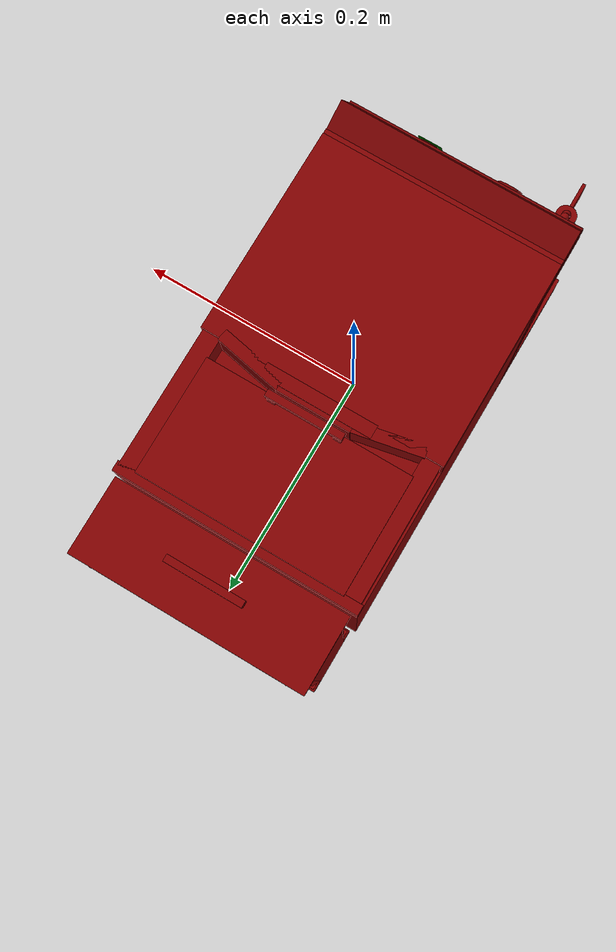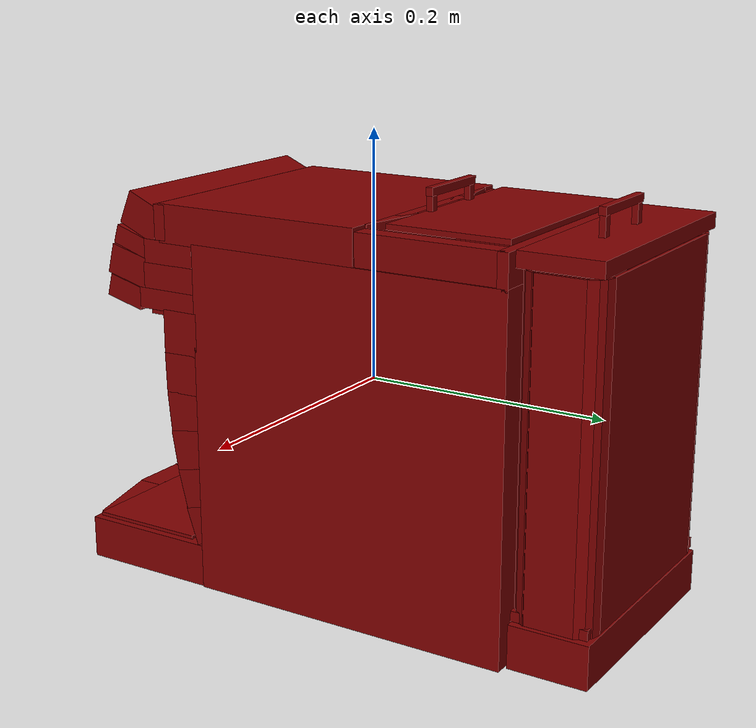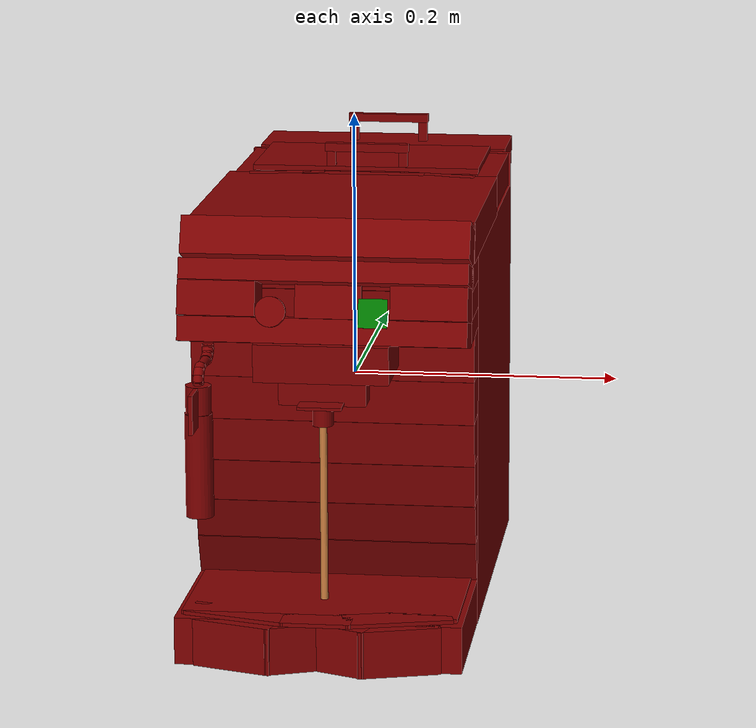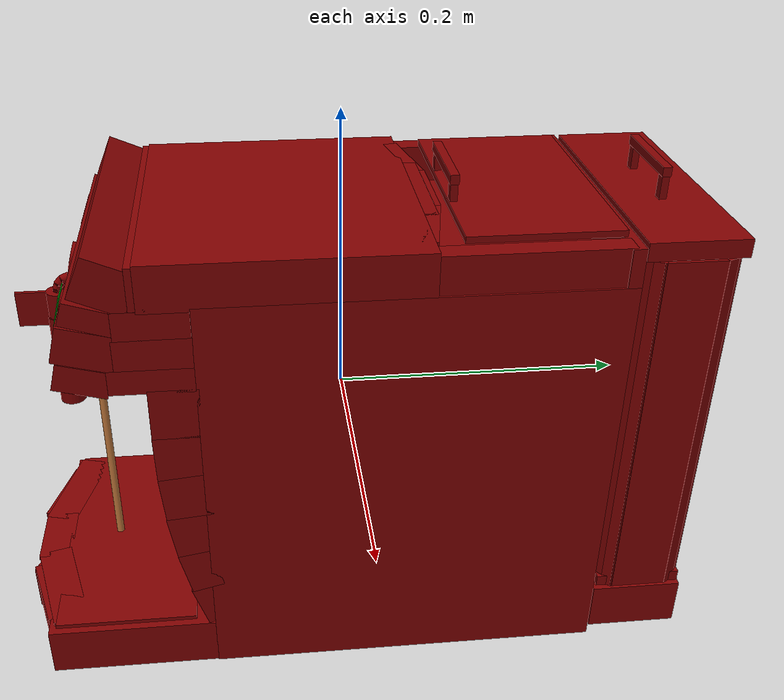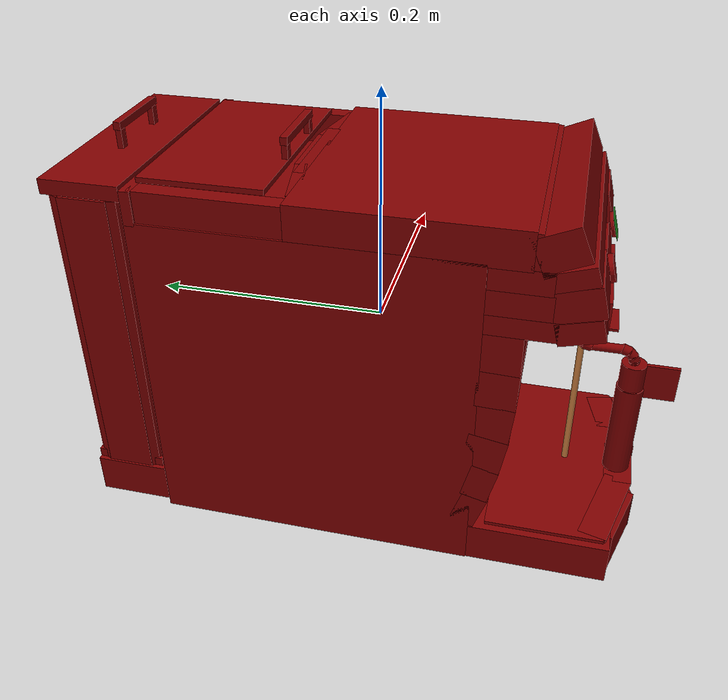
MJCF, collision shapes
<?xml version='1.0' encoding='UTF-8'?>
<mujoco model="model">
  <option timestep="0.002" gravity="0.0 0.0 -9.81"/>
  <compiler angle="radian"/>
  <asset>
    <mesh file="visuals/Body001.obj" name="Body001_vis"/>
    <mesh file="visuals/Button001.obj" name="Button001_vis"/>
    <mesh file="visuals/Button002.obj" name="Button002_vis"/>
    <mesh file="visuals/Container001_Clear.obj" name="Container001_Clear_vis"/>
    <mesh file="visuals/Lever001.obj" name="Lever001_vis"/>
    <mesh file="visuals/Lid001.obj" name="Lid001_vis"/>
    <mesh file="visuals/Lid002.obj" name="Lid002_vis"/>
    <mesh file="visuals/Lid003.obj" name="Lid003_vis"/>
    <texture file="visuals/T_BC001.png" name="Body001_material" type="2d"/>
    <material name="Body001_material" rgba="1 1 1 1.0" texture="Body001_material" shininess="0.1" specular="4"/>
    <texture file="visuals/T_BC001.png" name="Button001_material" type="2d"/>
    <material name="Button001_material" rgba="1 1 1 1.0" texture="Button001_material" shininess="0.1" specular="4"/>
    <texture file="visuals/T_BC001.png" name="Button002_material" type="2d"/>
    <material name="Button002_material" rgba="1 1 1 1.0" texture="Button002_material" shininess="0.1" specular="4"/>
    <texture file="visuals/T_BC001.png" name="Container001_Clear_material" type="2d"/>
    <material name="Container001_Clear_material" rgba="1 1 1 0.30000001192092896" texture="Container001_Clear_material" shininess="0.5" specular="0.3103448502657381"/>
    <texture file="visuals/T_BC001.png" name="Lid003_material" type="2d"/>
    <material name="Lid003_material" rgba="1 1 1 1.0" texture="Lid003_material" shininess="0.1" specular="4"/>
    <texture file="visuals/T_BC001.png" name="Lever001_material" type="2d"/>
    <material name="Lever001_material" rgba="1 1 1 1.0" texture="Lever001_material" shininess="0.1" specular="4"/>
    <texture file="visuals/T_BC001.png" name="Lid001_material" type="2d"/>
    <material name="Lid001_material" rgba="1 1 1 1.0" texture="Lid001_material" shininess="0.1" specular="4"/>
    <texture file="visuals/T_BC001.png" name="Lid002_material" type="2d"/>
    <material name="Lid002_material" rgba="1 1 1 1.0" texture="Lid002_material" shininess="0.1" specular="4"/>
  </asset>
  <default>
    <default class="visual">
      <geom conaffinity="0" contype="0" group="1" type="mesh"/>
    </default>
    <default class="collision">
      <geom group="0" rgba="0.5 0 0 0.5"/>
    </default>
    <default class="spawn">
      <geom group="0" rgba="1 1 1 0.5" contype="0" conaffinity="0"/>
      <site group="0" rgba="1 1 1 0.5"/>
    </default>
    <default class="region">
      <geom group="1" conaffinity="0" contype="0" rgba="0 1 0 0"/>
    </default>
  </default>
  <worldbody>
    <body>
      <body name="object">
        <geom class="collision" type="box" pos="0.03713941 -0.18549418 0.08974537" size="0.010415244847536087 0.010415244847536087 0.0003184067609254271" quat="0.7933533191680908 0.6087614297866821 -1.3517219117058102e-16 -2.6126816801125714e-24" name="start_button" rgba="0.0 0.5 0 0.5"/>
        <geom mesh="Body001_vis" type="mesh" solimp="0.998 0.998 0.001" solref="0.001 1" friction="0.95 0.3 0.1" class="visual" material="Body001_material"/>
        <geom class="collision" type="box" pos="0.00000550 0.03661621 -0.02510629" size="0.10385061055421829 0.13536663353443146 0.1417696475982666" quat="1.0 0.0 0.0 0.0"/>
        <geom class="collision" type="box" pos="0.00000550 0.16761360 0.12844961" size="0.10385061055421829 0.004345276392996311 0.013829709030687809" quat="1.0 0.0 0.0 0.0"/>
        <geom class="collision" type="box" pos="-0.09429560 0.10730639 0.12844961" size="0.05989970266819 0.007561163976788521 0.01382970716804266" quat="0.7071068286895752 0.0 -0.0 -0.7071067690849304"/>
        <geom class="collision" type="box" pos="0.09464745 0.10730639 0.12844961" size="0.05989970266819 0.007561163976788521 0.01382970716804266" quat="0.7071068286895752 0.0 -0.0 -0.7071067690849304"/>
        <geom class="collision" type="box" pos="0.00000550 -0.04100631 0.12993544" size="0.10385061055421829 0.08900878578424454 0.015315547585487366" quat="1.0 0.0 0.0 0.0"/>
        <geom class="collision" type="box" pos="0.00000550 0.05131525 0.12993544" size="0.04721876606345177 0.0055664400570094585 0.015315547585487366" quat="1.0 0.0 0.0 0.0"/>
        <geom class="collision" type="box" pos="0.00000550 0.05882834 0.12993544" size="0.03188616409897804 0.0018839340191334486 0.015315547585487366" quat="1.0 0.0 0.0 0.0"/>
        <geom class="collision" type="box" pos="-0.05927097 0.05011879 0.12993544" size="0.028971705585718155 0.004871274344623089 0.015315547585487366" quat="0.9953288435935974 0.0 0.0 0.09654255956411362"/>
        <geom class="collision" type="box" pos="0.05889623 0.05020360 0.12993544" size="0.028971707448363304 0.005043487995862961 0.015315547585487366" quat="9.39427238222379e-08 0.09654242545366287 0.9953288435935974 1.8650874267223116e-07"/>
        <geom class="collision" type="box" pos="0.00000550 -0.15637845 -0.14861536" size="0.10385061055421829 0.057872675359249115 0.017408352345228195" quat="1.0 0.0 0.0 0.0"/>
        <geom class="collision" type="box" pos="-0.05904757 -0.21691124 -0.14861536" size="0.030084267258644104 0.007930274121463299 0.017408352345228195" quat="0.9896388053894043 0.0 -0.0 -0.143579363822937"/>
        <geom class="collision" type="box" pos="0.05786578 -0.21595779 -0.14861536" size="0.030084259808063507 0.008903853595256805 0.017408352345228195" quat="5.132359603976511e-08 -0.14357930421829224 0.9896388053894043 1.7207268854235735e-07"/>
        <geom class="collision" type="box" pos="-0.02076556 -0.21570437 -0.14861536" size="0.01983846351504326 0.010606835596263409 0.017408352345228195" quat="0.9831233620643616 0.0 0.0 0.1829438954591751"/>
        <geom class="collision" type="box" pos="0.02036814 -0.21570437 -0.14861536" size="0.01983846351504326 0.010606835596263409 0.017408352345228195" quat="1.0984424392290748e-07 0.1829439103603363 0.9831233620643616 1.7760930859367363e-07"/>
        <geom class="collision" type="box" pos="0.00000550 -0.09791076 -0.11211017" size="0.10385061055421829 0.01613113470375538 0.010602785274386406" quat="0.5825121402740479 0.8128219842910767 -1.8048270990651252e-16 9.235185939952428e-24"/>
        <geom class="collision" type="box" pos="0.00000550 -0.10520397 -0.08257267" size="0.10385061055421829 0.01613113470375538 0.011195383034646511" quat="0.6141020655632019 0.7892266511917114 -1.7524350672527925e-16 -2.0004558034709542e-24"/>
        <geom class="collision" type="box" pos="0.00000550 -0.10702727 -0.05096875" size="0.10385061055421829 0.016131136566400528 0.015758054330945015" quat="0.6442039012908936 0.7648537755012512 -1.6983164117170412e-16 -1.4513890496866805e-23"/>
        <geom class="collision" type="box" pos="0.00000550 -0.11067387 -0.02009416" size="0.10385061055421829 0.016131136566400528 0.015758054330945015" quat="0.6718460917472839 0.7406907677650452 -1.6446637566511777e-16 -1.333264544422343e-23"/>
        <geom class="collision" type="box" pos="0.00000550 -0.11261872 0.01114509" size="0.10385061055421829 0.01613113470375538 0.015758052468299866" quat="0.6962460279464722 0.7178032398223877 -1.5938432356537978e-16 5.027924886283712e-24"/>
        <geom class="collision" type="box" pos="0.00000550 -0.11286183 0.04420764" size="0.10385061055421829 0.017620937898755074 0.015758058056235313" quat="0.707630455493927 0.7065827250480652 -1.5689288203014966e-16 -2.733011761581816e-23"/>
        <geom class="collision" type="box" pos="0.00000550 -0.12512344 0.06865727" size="0.10385061055421829 0.026443947106599808 0.008293532766401768" quat="1.0 0.0 0.0 0.0"/>
        <geom class="collision" type="box" pos="0.00000550 -0.12218590 0.10669501" size="0.10385061055421829 0.023252753540873528 0.009452405385673046" quat="1.0 0.0 0.0 0.0"/>
        <geom class="collision" type="box" pos="0.00000550 -0.12927651 0.13019537" size="0.10385061055421829 0.005140719469636679 0.013905131258070469" quat="1.0 0.0 0.0 0.0"/>
        <geom class="collision" type="box" pos="0.00000550 -0.14709128 0.13266403" size="0.10385061055421829 0.017418470233678818 0.013905131258070469" quat="0.9797577261924744 -0.20018696784973145 4.4450442804778463e-17 4.432707245189113e-24"/>
        <geom class="collision" type="box" pos="0.00000550 -0.15611412 0.11149344" size="0.10385061055421829 0.018502160906791687 0.007589208427816629" quat="0.9886624813079834 -0.15015475451946259 3.334105645361158e-17 -1.2039743046902811e-24"/>
        <geom class="collision" type="box" pos="0.00000550 -0.16622886 0.07092428" size="0.10385061055421829 0.017049578949809074 0.009000824764370918" quat="0.9922476410865784 -0.12427633255720139 2.7594894127279263e-17 3.745213782997643e-25"/>
        <geom class="collision" type="box" pos="0.00000550 -0.15748225 0.05182571" size="0.048668261617422104 0.03092627413570881 0.01374830026179552" quat="1.0 0.0 0.0 0.0"/>
        <geom class="collision" type="box" pos="0.00000550 -0.17132212 0.02918043" size="0.03141579404473305 0.010052923113107681 0.008940882049500942" quat="1.0 0.0 0.0 0.0"/>
        <geom class="collision" type="box" pos="0.00000550 -0.18963943 0.02219241" size="0.015898415818810463 0.008515176363289356 0.0010712944203987718" quat="1.0 0.0 0.0 0.0"/>
        <geom class="collision" type="cylinder" pos="-0.00083744 -0.17105922 0.01213610" size="0.007553964853286743 0.008512386120855808" quat="1.0 0.0 0.0 0.0"/>
        <geom class="collision" type="box" pos="0.00000550 -0.12266712 0.08713764" size="0.10385061055421829 0.02403733879327774 0.010288608260452747" quat="1.0 0.0 0.0 0.0"/>
        <geom class="collision" type="box" pos="-0.00044522 0.20724200 -0.14792305" size="0.0985279455780983 0.03189034387469292 0.017388582229614258" quat="1.0 0.0 0.0 0.0"/>
        <geom class="collision" type="box" pos="-0.07586989 -0.16231775 0.09268939" size="0.027956640347838402 0.018736500293016434 0.01253354363143444" quat="0.9922476410865784 -0.12427633255720139 2.7594894127279263e-17 3.745213782997643e-25"/>
        <geom class="collision" type="box" pos="0.07632418 -0.16233320 0.09222598" size="0.027513351291418076 0.018637187778949738 0.01208063866943121" quat="0.9922476410865784 -0.12427633255720139 2.7594894127279263e-17 3.745213782997643e-25"/>
        <geom class="collision" type="box" pos="0.00065398 -0.14925364 0.08889741" size="0.0239991694688797 0.005140719469636679 0.01208063866943121" quat="0.9922476410865784 -0.12427633255720139 2.7594894127279263e-17 3.745213782997643e-25"/>
        <body name="Button001">
          <joint axis="-1.4874184758277457e-17 0.9659257531166077 -0.25881919264793396" pos="-0.03625964 -0.18390398 0.08882841" limited="true" name="Button001_joint" range="0.0 0.002" type="slide" damping="1" frictionloss="1" armature=".01" stiffness="0.05" springref="-5"/>
          <geom mesh="Button001_vis" type="mesh" solimp="0.998 0.998 0.001" solref="0.001 1" friction="0.95 0.3 0.1" class="visual" material="Button001_material"/>
          <geom class="collision" type="cylinder" pos="-0.03625964 -0.18373603 0.08882552" size="0.010931293480098248 0.0022768608760088682" quat="0.7933533191680908 0.6087614297866821 -1.3517219117058102e-16 -2.6126816801125714e-24"/>
        </body>
        <body name="Button002">
          <joint axis="-1.4874184758277457e-17 0.9659257531166077 -0.25881919264793396" pos="0.03713941 -0.18365325 0.08925963" limited="true" name="Button002_joint" range="0.0 0.002" type="slide" damping="1" frictionloss="1" armature=".01" stiffness="0.05" springref="-5"/>
          <geom mesh="Button002_vis" type="mesh" solimp="0.998 0.998 0.001" solref="0.001 1" friction="0.95 0.3 0.1" class="visual" material="Button002_material"/>
          <geom class="collision" type="cylinder" pos="0.03713941 -0.18333557 0.08916696" size="0.010415244847536087 0.001432239543646574" quat="0.7933533191680908 0.6087614297866821 -1.3517219117058102e-16 -2.6126816801125714e-24"/>
        </body>
        <body name="Container001_Clear">
          <geom mesh="Container001_Clear_vis" type="mesh" solimp="0.998 0.998 0.001" solref="0.001 1" friction="0.95 0.3 0.1" class="visual" material="Container001_Clear_material"/>
          <geom class="collision" type="box" pos="0.00000550 0.23856151 0.00095072" size="0.08326917141675949 0.0012448341585695744 0.1288316249847412" quat="1.0 0.0 0.0 0.0"/>
          <geom class="collision" type="box" pos="0.00000550 0.17584692 0.00095072" size="0.08326917141675949 0.0012448341585695744 0.1288316249847412" quat="1.0 0.0 0.0 0.0"/>
          <geom class="collision" type="box" pos="-0.09843131 0.20677775 0.00095072" size="0.02020031400024891 0.0012448341585695744 0.1288316249847412" quat="0.7071068286895752 0.0 -0.0 -0.7071067690849304"/>
          <geom class="collision" type="box" pos="0.09731352 0.20677775 0.00095072" size="0.02020031400024891 0.0012448341585695744 0.1288316249847412" quat="0.7071068286895752 0.0 -0.0 -0.7071067690849304"/>
          <geom class="collision" type="box" pos="-0.09664320 0.22997583 0.00095072" size="0.004168647341430187 0.0012448341585695744 0.1288316249847412" quat="0.529154360294342 0.0 -0.0 -0.8485255837440491"/>
          <geom class="collision" type="box" pos="-0.08710191 0.23781550 0.00095072" size="0.004168647341430187 0.0012448341585695744 0.1288316249847412" quat="0.1368826925754547 0.0 -0.0 -0.9905872344970703"/>
          <geom class="collision" type="box" pos="-0.09284492 0.23511112 0.00095072" size="0.002946387743577361 0.001244834391400218 0.1288316249847412" quat="0.3439255654811859 0.0 -0.0 -0.9389969110488892"/>
          <geom class="collision" type="box" pos="0.09576122 0.22997583 0.00095072" size="0.004168651532381773 0.0012448378838598728 0.1288316249847412" quat="1.1032908986408074e-07 -0.8485255837440491 0.529154360294342 3.424172589916452e-08"/>
          <geom class="collision" type="box" pos="0.08621993 0.23781550 0.00095072" size="0.0041686492040753365 0.0012448434717953205 0.1288316249847412" quat="1.879148925354457e-07 -0.9905872344970703 0.13688291609287262 -6.254323636767367e-08"/>
          <geom class="collision" type="box" pos="0.09196294 0.23511112 0.00095072" size="0.002946389140561223 0.0012448435882106423 0.1288316249847412" quat="1.928527098016275e-07 -0.9389968514442444 0.34392574429512024 -3.9598955225983445e-08"/>
          <geom class="collision" type="box" pos="-0.09664320 0.18458782 0.00095072" size="0.004168651532381773 0.0012448378838598728 0.1288316249847412" quat="2.4111839636020704e-08 0.5291544795036316 0.8485255241394043 -1.0401195282838671e-07"/>
          <geom class="collision" type="box" pos="-0.08710191 0.17674816 0.00095072" size="0.004168650135397911 0.0012448378838598728 0.1288316249847412" quat="6.445291944601195e-08 0.13688266277313232 0.9905872941017151 -8.512152049888755e-08"/>
          <geom class="collision" type="box" pos="-0.09284492 0.17945254 0.00095072" size="0.002946391236037016 0.0012448380002751946 0.1288316249847412" quat="4.492661886956739e-08 0.34392574429512024 0.9389968514442444 -9.68579598747965e-08"/>
          <geom class="collision" type="box" pos="0.09576122 0.18458782 0.00095072" size="0.004168648272752762 0.0012448362540453672 0.1288316249847412" quat="0.8485255837440491 4.6267196296412294e-08 5.708320038877446e-09 0.529154360294342"/>
          <geom class="collision" type="box" pos="0.08621993 0.17674816 0.00095072" size="0.004168650135397911 0.0012448400957509875 0.1288316249847412" quat="0.9905872344970703 1.131278466459662e-07 7.287761860652608e-08 0.13688291609287262"/>
          <geom class="collision" type="box" pos="0.09196294 0.17945254 0.00095072" size="0.002946388442069292 0.0012448407942429185 0.1288316249847412" quat="0.9389968514442444 1.2196042575851607e-07 6.556465592666427e-08 0.34392574429512024"/>
          <geom class="collision" type="box" pos="-0.00044522 0.20696095 -0.12362680" size="0.09727999567985535 0.030171487480401993 0.004045017994940281" quat="1.0 0.0 0.0 0.0"/>
          <body name="Lid003">
            <geom mesh="Lid003_vis" type="mesh" solimp="0.998 0.998 0.001" solref="0.001 1" friction="0.95 0.3 0.1" class="visual" material="Lid003_material"/>
            <geom class="collision" type="box" pos="-0.00044522 0.20696095 0.13738929" size="0.09930843114852905 0.03241795301437378 0.006119163706898689" quat="1.0 0.0 0.0 0.0"/>
            <geom class="collision" type="box" pos="0.00071445 0.20638503 0.16224995" size="0.03243435546755791 0.0029803814832121134 0.003190913936123252" quat="1.0 0.0 0.0 0.0"/>
            <geom class="collision" type="box" pos="0.02888449 0.20639269 0.15137507" size="0.0034317008685320616 0.0024682353250682354 0.007980492897331715" quat="1.0 0.0 0.0 0.0"/>
            <geom class="collision" type="box" pos="-0.02716057 0.20639269 0.15137507" size="0.0034317008685320616 0.0024682353250682354 0.007980492897331715" quat="1.0 0.0 0.0 0.0"/>
          </body>
        </body>
        <body name="Lever001">
          <joint axis="0.0 0.0 -1.0" pos="-0.08440567 -0.16468278 0.06142372" limited="true" name="Lever001_joint" range="0.0 1.3089969389957472" type="hinge" damping="1" frictionloss="1" armature=".01" stiffness="0.01" springref="-0.01"/>
          <geom mesh="Lever001_vis" type="mesh" solimp="0.998 0.998 0.001" solref="0.001 1" friction="0.95 0.3 0.1" class="visual" material="Lever001_material"/>
          <geom class="collision" type="box" pos="-0.08446143 -0.22800325 0.02581912" size="0.0014831729931756854 0.011660904623568058 0.014016982167959213" quat="1.0 0.0 0.0 0.0"/>
          <geom class="collision" type="cylinder" pos="-0.08446143 -0.20744386 -0.01819363" size="0.00998516846448183 0.037780001759529114" quat="1.0 0.0 0.0 0.0"/>
          <geom class="collision" type="cylinder" pos="-0.08446143 -0.20744386 0.02965218" size="0.009125753305852413 0.010445179417729378" quat="1.0 0.0 0.0 0.0"/>
          <geom class="collision" type="cylinder" pos="-0.08446143 -0.18646398 0.05044598" size="0.0034377879928797483 0.011636033654212952" quat="0.7071068286895752 0.7071067690849304 -1.5700924318127872e-16 -5.9269340452702814e-24"/>
          <geom class="collision" type="cylinder" pos="-0.08446143 -0.20010175 0.05009078" size="0.0038652813527733088 0.0031983964145183563" quat="0.5620652437210083 0.8270928859710693 -1.8365151310175006e-16 1.6991271093250847e-24"/>
          <geom class="collision" type="cylinder" pos="-0.08446143 -0.20402765 0.04751090" size="0.0038652813527733088 0.0031983964145183563" quat="0.3725944757461548 0.9279942512512207 -2.0605611689177754e-16 1.6253715334722694e-23"/>
          <geom class="collision" type="cylinder" pos="-0.08446143 -0.20640188 0.04356631" size="0.0038652813527733088 0.0031983964145183563" quat="0.1722848266363144 0.9850471615791321 -2.187248313418355e-16 1.4421696322873625e-23"/>
          <geom class="collision" type="cylinder" pos="-0.08446143 -0.20707490 0.03950954" size="0.0038652813527733088 0.0031983964145183563" quat="0.008437251672148705 0.9999644160270691 -2.220367036958202e-16 9.246119552098791e-24"/>
          <geom class="collision" type="cylinder" pos="-0.08446143 -0.17279644 0.05105169" size="0.004256662912666798 0.0031790086068212986" quat="0.6109145283699036 0.7916965484619141 -1.7579197379351621e-16 5.969173996870793e-24"/>
          <geom class="collision" type="cylinder" pos="-0.08446143 -0.16845582 0.05327500" size="0.00401742197573185 0.0030003355350345373" quat="0.4699932634830475 0.882669985294342 -1.9599210816386537e-16 -1.6739328641645887e-24"/>
          <geom class="collision" type="cylinder" pos="-0.08446143 -0.16534845 0.05767193" size="0.004228831268846989 0.002063020132482052" quat="0.0038151212502270937 0.9999927282333374 -2.220429902684756e-16 1.1298587321633682e-23"/>
          <geom class="collision" type="cylinder" pos="-0.08446143 -0.16649865 0.05548714" size="0.004228831268846989 0.002535817679017782" quat="0.26043400168418884 0.9654916524887085 -2.143822125352709e-16 5.2777918448470365e-24"/>
        </body>
        <body name="Lid001">
          <geom mesh="Lid001_vis" type="mesh" solimp="0.998 0.998 0.001" solref="0.001 1" friction="0.95 0.3 0.1" class="visual" material="Lid001_material"/>
          <geom class="collision" type="box" pos="0.00057861 -0.16039889 -0.12822947" size="0.09955251961946487 0.048658475279808044 0.0014220435405150056" quat="1.0 0.0 0.0 0.0"/>
          <geom class="collision" type="box" pos="0.00057861 -0.21831515 -0.12822947" size="0.025284498929977417 0.01186862587928772 0.0014220435405150056" quat="1.0 0.0 0.0 0.0"/>
          <geom class="collision" type="box" pos="-0.05701214 -0.20907220 -0.12822947" size="0.0388624407351017 0.011868624947965145 0.0014220435405150056" quat="0.9915341734886169 0.0 -0.0 -0.1298459768295288"/>
          <geom class="collision" type="box" pos="0.05708751 -0.20907220 -0.12822947" size="0.038862444460392 0.011868624947965145 0.0014220435405150056" quat="5.370420907979678e-08 -0.1298457533121109 0.9915342330932617 1.7134438223820325e-07"/>
        </body>
        <body name="Lid002">
          <joint axis="-1.0 0.0 0.0" pos="0.00011597 0.16406873 0.14508577" limited="true" name="Lid002_joint" range="0.0 1.5707963267948966" type="hinge" damping="1" frictionloss="1" armature=".01" stiffness="0.05"/>
          <geom mesh="Lid002_vis" type="mesh" solimp="0.998 0.998 0.001" solref="0.001 1" friction="0.95 0.3 0.1" class="visual" material="Lid002_material"/>
          <geom class="collision" type="box" pos="-0.00044522 0.11528090 0.14543598" size="0.08798467367887497 0.049731526523828506 0.0021538978908210993" quat="1.0 0.0 0.0 0.0"/>
          <geom class="collision" type="box" pos="-0.02716057 0.06869391 0.15137507" size="0.0034317008685320616 0.0024682353250682354 0.007980492897331715" quat="1.0 0.0 0.0 0.0"/>
          <geom class="collision" type="box" pos="0.02888449 0.06869392 0.15137507" size="0.0034317008685320616 0.0024682353250682354 0.007980492897331715" quat="1.0 0.0 0.0 0.0"/>
          <geom class="collision" type="box" pos="0.00071445 0.06868626 0.16224995" size="0.03243435546755791 0.0029803814832121134 0.003190913936123252" quat="1.0 0.0 0.0 0.0"/>
        </body>
        <site type="cylinder" rgba="0.8 0.5 0.25 1" size="0.0027536980342119932 0.07233459502458572" pos="-0.00057161 -0.17154971 -0.06568774" name="coffee_liquid"/>
        <site rgba="0 0 0 0" size="0.009999999776482582 0.009999999776482582" pos="-0.00057161 -0.19154971 -0.11813153" name="receptacle_place_site"/>
        <geom class="region" name="reg_main" type="box" pos="5.5000000000055005e-06 0.004143000000000008 -0.008785500000000002" size="0.1027821 0.23622915 0.15700571"/>
      </body>
    </body>
  </worldbody>
  <actuator>
    <motor name="Button001_joint_actuator" joint="Button001_joint" gear="0.5"/>
    <motor name="Button002_joint_actuator" joint="Button002_joint" gear="0.5"/>
    <motor name="Lever001_joint_actuator" joint="Lever001_joint" gear="10"/>
    <motor name="Lid002_joint_actuator" joint="Lid002_joint" gear="10"/>
  </actuator>
</mujoco>
